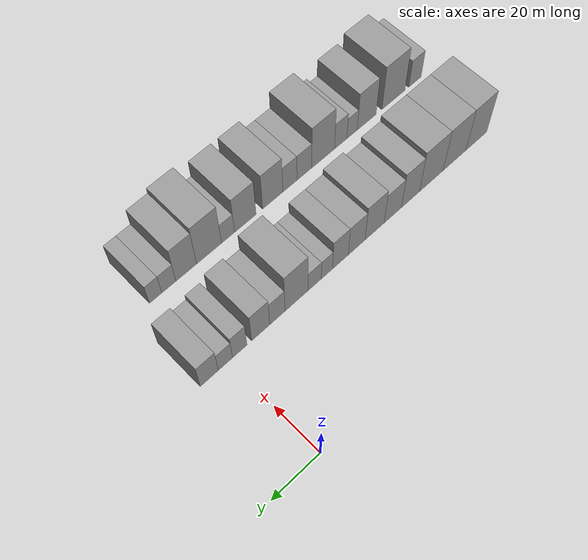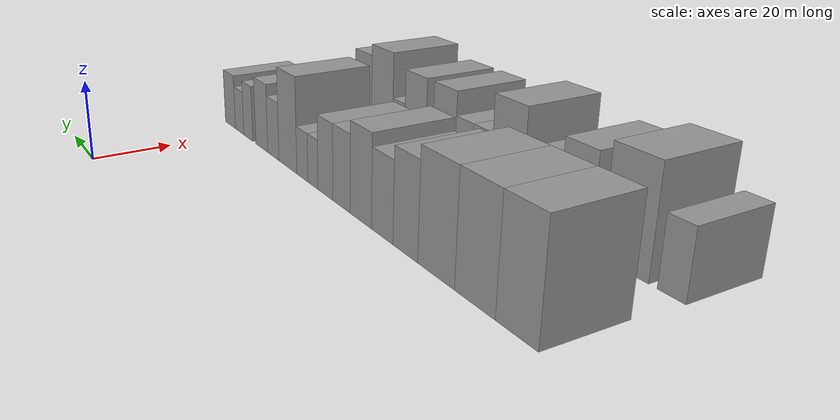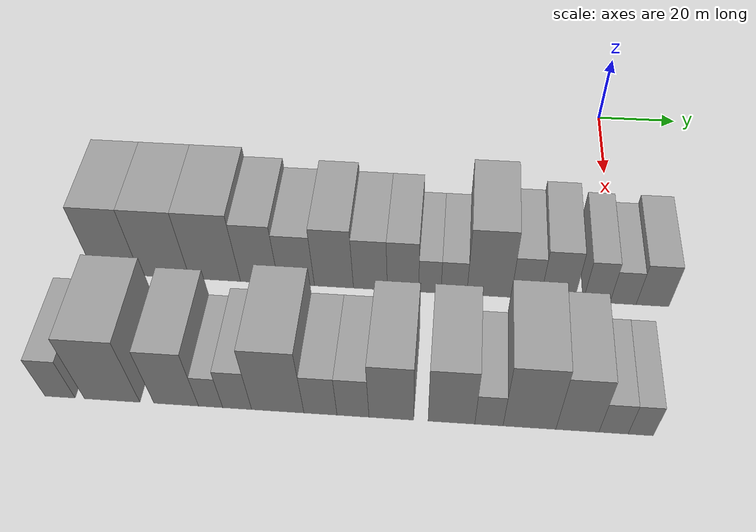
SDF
<sdf version="1.6">
 <world name="default">
  <model name="building_15">
   <static>1</static>
   <pose>50.0000 -115.5003 0 0.000000 0.000000 0.000000</pose>
   <link name="link">
    <pose>0 0 12.00 0 0 0</pose>
    <collision name="collision"><geometry><box><size>20.0000 10.9469 24.0000</size></box></geometry></collision>
    <visual name="visual">
     <cast_shadows>0</cast_shadows>
     <geometry><box><size>20.0000 10.9469 24.0000</size></box></geometry>
     <material>
      <script>
       <uri>model://grey_wall/materials/scripts</uri>
       <uri>model://grey_wall/materials/textures</uri>
       <name>vrc/grey_wall</name>
      </script>
     </material>
    </visual>
   </link>
  </model>
  <model name="building_16">
   <static>1</static>
   <pose>50.0000 -104.1812 0 0.000000 0.000000 0.000000</pose>
   <link name="link">
    <pose>0 0 12.00 0 0 0</pose>
    <collision name="collision"><geometry><box><size>20.0000 11.6913 24.0000</size></box></geometry></collision>
    <visual name="visual">
     <cast_shadows>0</cast_shadows>
     <geometry><box><size>20.0000 11.6913 24.0000</size></box></geometry>
     <material>
      <script>
       <uri>model://grey_wall/materials/scripts</uri>
       <uri>model://grey_wall/materials/textures</uri>
       <name>vrc/grey_wall</name>
      </script>
     </material>
    </visual>
   </link>
  </model>
  <model name="building_17">
   <static>1</static>
   <pose>50.0000 -92.3757 0 0.000000 0.000000 0.000000</pose>
   <link name="link">
    <pose>0 0 12.00 0 0 0</pose>
    <collision name="collision"><geometry><box><size>20.0000 11.9197 24.0000</size></box></geometry></collision>
    <visual name="visual">
     <cast_shadows>0</cast_shadows>
     <geometry><box><size>20.0000 11.9197 24.0000</size></box></geometry>
     <material>
      <script>
       <uri>model://grey_wall/materials/scripts</uri>
       <uri>model://grey_wall/materials/textures</uri>
       <name>vrc/grey_wall</name>
      </script>
     </material>
    </visual>
   </link>
  </model>
  <model name="building_18">
   <static>1</static>
   <pose>50.0000 -81.9634 0 0.000000 0.000000 0.000000</pose>
   <link name="link">
    <pose>0 0 10.50 0 0 0</pose>
    <collision name="collision"><geometry><box><size>20.0000 8.9050 21.0000</size></box></geometry></collision>
    <visual name="visual">
     <cast_shadows>0</cast_shadows>
     <geometry><box><size>20.0000 8.9050 21.0000</size></box></geometry>
     <material>
      <script>
       <uri>model://grey_wall/materials/scripts</uri>
       <uri>model://grey_wall/materials/textures</uri>
       <name>vrc/grey_wall</name>
      </script>
     </material>
    </visual>
   </link>
  </model>
  <model name="building_19">
   <static>1</static>
   <pose>50.0000 -73.3345 0 0.000000 0.000000 0.000000</pose>
   <link name="link">
    <pose>0 0 9.00 0 0 0</pose>
    <collision name="collision"><geometry><box><size>20.0000 8.3528 18.0000</size></box></geometry></collision>
    <visual name="visual">
     <cast_shadows>0</cast_shadows>
     <geometry><box><size>20.0000 8.3528 18.0000</size></box></geometry>
     <material>
      <script>
       <uri>model://grey_wall/materials/scripts</uri>
       <uri>model://grey_wall/materials/textures</uri>
       <name>vrc/grey_wall</name>
      </script>
     </material>
    </visual>
   </link>
  </model>
  <model name="building_20">
   <static>1</static>
   <pose>50.0000 -64.6351 0 0.000000 0.000000 0.000000</pose>
   <link name="link">
    <pose>0 0 10.50 0 0 0</pose>
    <collision name="collision"><geometry><box><size>20.0000 9.0460 21.0000</size></box></geometry></collision>
    <visual name="visual">
     <cast_shadows>0</cast_shadows>
     <geometry><box><size>20.0000 9.0460 21.0000</size></box></geometry>
     <material>
      <script>
       <uri>model://grey_wall/materials/scripts</uri>
       <uri>model://grey_wall/materials/textures</uri>
       <name>vrc/grey_wall</name>
      </script>
     </material>
    </visual>
   </link>
  </model>
  <model name="building_21">
   <static>1</static>
   <pose>50.0000 -56.1918 0 0.000000 0.000000 0.000000</pose>
   <link name="link">
    <pose>0 0 9.00 0 0 0</pose>
    <collision name="collision"><geometry><box><size>20.0000 7.8406 18.0000</size></box></geometry></collision>
    <visual name="visual">
     <cast_shadows>0</cast_shadows>
     <geometry><box><size>20.0000 7.8406 18.0000</size></box></geometry>
     <material>
      <script>
       <uri>model://grey_wall/materials/scripts</uri>
       <uri>model://grey_wall/materials/textures</uri>
       <name>vrc/grey_wall</name>
      </script>
     </material>
    </visual>
   </link>
  </model>
  <model name="building_22">
   <static>1</static>
   <pose>50.0000 -48.6585 0 0.000000 0.000000 0.000000</pose>
   <link name="link">
    <pose>0 0 9.00 0 0 0</pose>
    <collision name="collision"><geometry><box><size>20.0000 7.2261 18.0000</size></box></geometry></collision>
    <visual name="visual">
     <cast_shadows>0</cast_shadows>
     <geometry><box><size>20.0000 7.2261 18.0000</size></box></geometry>
     <material>
      <script>
       <uri>model://grey_wall/materials/scripts</uri>
       <uri>model://grey_wall/materials/textures</uri>
       <name>vrc/grey_wall</name>
      </script>
     </material>
    </visual>
   </link>
  </model>
  <model name="building_23">
   <static>1</static>
   <pose>50.0000 -42.4910 0 0.000000 0.000000 0.000000</pose>
   <link name="link">
    <pose>0 0 6.00 0 0 0</pose>
    <collision name="collision"><geometry><box><size>20.0000 5.1089 12.0000</size></box></geometry></collision>
    <visual name="visual">
     <cast_shadows>0</cast_shadows>
     <geometry><box><size>20.0000 5.1089 12.0000</size></box></geometry>
     <material>
      <script>
       <uri>model://grey_wall/materials/scripts</uri>
       <uri>model://grey_wall/materials/textures</uri>
       <name>vrc/grey_wall</name>
      </script>
     </material>
    </visual>
   </link>
  </model>
  <model name="building_24">
   <static>1</static>
   <pose>50.0000 -36.9791 0 0.000000 0.000000 0.000000</pose>
   <link name="link">
    <pose>0 0 6.00 0 0 0</pose>
    <collision name="collision"><geometry><box><size>20.0000 5.9149 12.0000</size></box></geometry></collision>
    <visual name="visual">
     <cast_shadows>0</cast_shadows>
     <geometry><box><size>20.0000 5.9149 12.0000</size></box></geometry>
     <material>
      <script>
       <uri>model://grey_wall/materials/scripts</uri>
       <uri>model://grey_wall/materials/textures</uri>
       <name>vrc/grey_wall</name>
      </script>
     </material>
    </visual>
   </link>
  </model>
  <model name="building_25">
   <static>1</static>
   <pose>50.0000 -28.9703 0 0.000000 0.000000 0.000000</pose>
   <link name="link">
    <pose>0 0 12.00 0 0 0</pose>
    <collision name="collision"><geometry><box><size>20.0000 10.1026 24.0000</size></box></geometry></collision>
    <visual name="visual">
     <cast_shadows>0</cast_shadows>
     <geometry><box><size>20.0000 10.1026 24.0000</size></box></geometry>
     <material>
      <script>
       <uri>model://grey_wall/materials/scripts</uri>
       <uri>model://grey_wall/materials/textures</uri>
       <name>vrc/grey_wall</name>
      </script>
     </material>
    </visual>
   </link>
  </model>
  <model name="building_26">
   <static>1</static>
   <pose>50.0000 -20.5697 0 0.000000 0.000000 0.000000</pose>
   <link name="link">
    <pose>0 0 7.50 0 0 0</pose>
    <collision name="collision"><geometry><box><size>20.0000 6.6987 15.0000</size></box></geometry></collision>
    <visual name="visual">
     <cast_shadows>0</cast_shadows>
     <geometry><box><size>20.0000 6.6987 15.0000</size></box></geometry>
     <material>
      <script>
       <uri>model://grey_wall/materials/scripts</uri>
       <uri>model://grey_wall/materials/textures</uri>
       <name>vrc/grey_wall</name>
      </script>
     </material>
    </visual>
   </link>
  </model>
  <model name="building_27">
   <static>1</static>
   <pose>50.0000 -13.3778 0 0.000000 0.000000 0.000000</pose>
   <link name="link">
    <pose>0 0 9.00 0 0 0</pose>
    <collision name="collision"><geometry><box><size>20.0000 7.6851 18.0000</size></box></geometry></collision>
    <visual name="visual">
     <cast_shadows>0</cast_shadows>
     <geometry><box><size>20.0000 7.6851 18.0000</size></box></geometry>
     <material>
      <script>
       <uri>model://grey_wall/materials/scripts</uri>
       <uri>model://grey_wall/materials/textures</uri>
       <name>vrc/grey_wall</name>
      </script>
     </material>
    </visual>
   </link>
  </model>
  <model name="building_28">
   <static>1</static>
   <pose>50.0000 -4.5084 0 0.000000 0.000000 0.000000</pose>
   <link name="link">
    <pose>0 0 7.50 0 0 0</pose>
    <collision name="collision"><geometry><box><size>20.0000 6.0537 15.0000</size></box></geometry></collision>
    <visual name="visual">
     <cast_shadows>0</cast_shadows>
     <geometry><box><size>20.0000 6.0537 15.0000</size></box></geometry>
     <material>
      <script>
       <uri>model://grey_wall/materials/scripts</uri>
       <uri>model://grey_wall/materials/textures</uri>
       <name>vrc/grey_wall</name>
      </script>
     </material>
    </visual>
   </link>
  </model>
  <model name="building_29">
   <static>1</static>
   <pose>50.0000 1.4817 0 0.000000 0.000000 0.000000</pose>
   <link name="link">
    <pose>0 0 6.00 0 0 0</pose>
    <collision name="collision"><geometry><box><size>20.0000 5.9267 12.0000</size></box></geometry></collision>
    <visual name="visual">
     <cast_shadows>0</cast_shadows>
     <geometry><box><size>20.0000 5.9267 12.0000</size></box></geometry>
     <material>
      <script>
       <uri>model://grey_wall/materials/scripts</uri>
       <uri>model://grey_wall/materials/textures</uri>
       <name>vrc/grey_wall</name>
      </script>
     </material>
    </visual>
   </link>
  </model>
  <model name="building_30">
   <static>1</static>
   <pose>50.0000 8.1328 0 0.000000 0.000000 0.000000</pose>
   <link name="link">
    <pose>0 0 7.50 0 0 0</pose>
    <collision name="collision"><geometry><box><size>20.0000 7.3756 15.0000</size></box></geometry></collision>
    <visual name="visual">
     <cast_shadows>0</cast_shadows>
     <geometry><box><size>20.0000 7.3756 15.0000</size></box></geometry>
     <material>
      <script>
       <uri>model://grey_wall/materials/scripts</uri>
       <uri>model://grey_wall/materials/textures</uri>
       <name>vrc/grey_wall</name>
      </script>
     </material>
    </visual>
   </link>
  </model>
  <model name="building_79">
   <static>1</static>
   <pose>82.0000 -118.8463 0 0.000000 0.000000 0.000000</pose>
   <link name="link">
    <pose>0 0 7.50 0 0 0</pose>
    <collision name="collision"><geometry><box><size>20.0000 6.4748 15.0000</size></box></geometry></collision>
    <visual name="visual">
     <cast_shadows>0</cast_shadows>
     <geometry><box><size>20.0000 6.4748 15.0000</size></box></geometry>
     <material>
      <script>
       <uri>model://grey_wall/materials/scripts</uri>
       <uri>model://grey_wall/materials/textures</uri>
       <name>vrc/grey_wall</name>
      </script>
     </material>
    </visual>
   </link>
  </model>
  <model name="building_80">
   <static>1</static>
   <pose>82.0000 -107.6737 0 0.000000 0.000000 0.000000</pose>
   <link name="link">
    <pose>0 0 12.00 0 0 0</pose>
    <collision name="collision"><geometry><box><size>20.0000 11.8703 24.0000</size></box></geometry></collision>
    <visual name="visual">
     <cast_shadows>0</cast_shadows>
     <geometry><box><size>20.0000 11.8703 24.0000</size></box></geometry>
     <material>
      <script>
       <uri>model://grey_wall/materials/scripts</uri>
       <uri>model://grey_wall/materials/textures</uri>
       <name>vrc/grey_wall</name>
      </script>
     </material>
    </visual>
   </link>
  </model>
  <model name="building_81">
   <static>1</static>
   <pose>82.0000 -93.9997 0 0.000000 0.000000 0.000000</pose>
   <link name="link">
    <pose>0 0 10.50 0 0 0</pose>
    <collision name="collision"><geometry><box><size>20.0000 9.4776 21.0000</size></box></geometry></collision>
    <visual name="visual">
     <cast_shadows>0</cast_shadows>
     <geometry><box><size>20.0000 9.4776 21.0000</size></box></geometry>
     <material>
      <script>
       <uri>model://grey_wall/materials/scripts</uri>
       <uri>model://grey_wall/materials/textures</uri>
       <name>vrc/grey_wall</name>
      </script>
     </material>
    </visual>
   </link>
  </model>
  <model name="building_82">
   <static>1</static>
   <pose>82.0000 -86.6975 0 0.000000 0.000000 0.000000</pose>
   <link name="link">
    <pose>0 0 6.00 0 0 0</pose>
    <collision name="collision"><geometry><box><size>20.0000 5.1269 12.0000</size></box></geometry></collision>
    <visual name="visual">
     <cast_shadows>0</cast_shadows>
     <geometry><box><size>20.0000 5.1269 12.0000</size></box></geometry>
     <material>
      <script>
       <uri>model://grey_wall/materials/scripts</uri>
       <uri>model://grey_wall/materials/textures</uri>
       <name>vrc/grey_wall</name>
      </script>
     </material>
    </visual>
   </link>
  </model>
  <model name="building_83">
   <static>1</static>
   <pose>82.0000 -81.0775 0 0.000000 0.000000 0.000000</pose>
   <link name="link">
    <pose>0 0 7.50 0 0 0</pose>
    <collision name="collision"><geometry><box><size>20.0000 6.1131 15.0000</size></box></geometry></collision>
    <visual name="visual">
     <cast_shadows>0</cast_shadows>
     <geometry><box><size>20.0000 6.1131 15.0000</size></box></geometry>
     <material>
      <script>
       <uri>model://grey_wall/materials/scripts</uri>
       <uri>model://grey_wall/materials/textures</uri>
       <name>vrc/grey_wall</name>
      </script>
     </material>
    </visual>
   </link>
  </model>
  <model name="building_84">
   <static>1</static>
   <pose>82.0000 -72.5196 0 0.000000 0.000000 0.000000</pose>
   <link name="link">
    <pose>0 0 12.00 0 0 0</pose>
    <collision name="collision"><geometry><box><size>20.0000 11.0028 24.0000</size></box></geometry></collision>
    <visual name="visual">
     <cast_shadows>0</cast_shadows>
     <geometry><box><size>20.0000 11.0028 24.0000</size></box></geometry>
     <material>
      <script>
       <uri>model://grey_wall/materials/scripts</uri>
       <uri>model://grey_wall/materials/textures</uri>
       <name>vrc/grey_wall</name>
      </script>
     </material>
    </visual>
   </link>
  </model>
  <model name="building_85">
   <static>1</static>
   <pose>82.0000 -63.5574 0 0.000000 0.000000 0.000000</pose>
   <link name="link">
    <pose>0 0 7.50 0 0 0</pose>
    <collision name="collision"><geometry><box><size>20.0000 6.9216 15.0000</size></box></geometry></collision>
    <visual name="visual">
     <cast_shadows>0</cast_shadows>
     <geometry><box><size>20.0000 6.9216 15.0000</size></box></geometry>
     <material>
      <script>
       <uri>model://grey_wall/materials/scripts</uri>
       <uri>model://grey_wall/materials/textures</uri>
       <name>vrc/grey_wall</name>
      </script>
     </material>
    </visual>
   </link>
  </model>
  <model name="building_86">
   <static>1</static>
   <pose>82.0000 -56.7613 0 0.000000 0.000000 0.000000</pose>
   <link name="link">
    <pose>0 0 7.50 0 0 0</pose>
    <collision name="collision"><geometry><box><size>20.0000 6.6706 15.0000</size></box></geometry></collision>
    <visual name="visual">
     <cast_shadows>0</cast_shadows>
     <geometry><box><size>20.0000 6.6706 15.0000</size></box></geometry>
     <material>
      <script>
       <uri>model://grey_wall/materials/scripts</uri>
       <uri>model://grey_wall/materials/textures</uri>
       <name>vrc/grey_wall</name>
      </script>
     </material>
    </visual>
   </link>
  </model>
  <model name="building_87">
   <static>1</static>
   <pose>82.0000 -48.7768 0 0.000000 0.000000 0.000000</pose>
   <link name="link">
    <pose>0 0 10.50 0 0 0</pose>
    <collision name="collision"><geometry><box><size>20.0000 9.2984 21.0000</size></box></geometry></collision>
    <visual name="visual">
     <cast_shadows>0</cast_shadows>
     <geometry><box><size>20.0000 9.2984 21.0000</size></box></geometry>
     <material>
      <script>
       <uri>model://grey_wall/materials/scripts</uri>
       <uri>model://grey_wall/materials/textures</uri>
       <name>vrc/grey_wall</name>
      </script>
     </material>
    </visual>
   </link>
  </model>
  <model name="building_88">
   <static>1</static>
   <pose>82.0000 -36.3054 0 0.000000 0.000000 0.000000</pose>
   <link name="link">
    <pose>0 0 10.50 0 0 0</pose>
    <collision name="collision"><geometry><box><size>20.0000 9.6443 21.0000</size></box></geometry></collision>
    <visual name="visual">
     <cast_shadows>0</cast_shadows>
     <geometry><box><size>20.0000 9.6443 21.0000</size></box></geometry>
     <material>
      <script>
       <uri>model://grey_wall/materials/scripts</uri>
       <uri>model://grey_wall/materials/textures</uri>
       <name>vrc/grey_wall</name>
      </script>
     </material>
    </visual>
   </link>
  </model>
  <model name="building_89">
   <static>1</static>
   <pose>82.0000 -28.5764 0 0.000000 0.000000 0.000000</pose>
   <link name="link">
    <pose>0 0 6.00 0 0 0</pose>
    <collision name="collision"><geometry><box><size>20.0000 5.8137 12.0000</size></box></geometry></collision>
    <visual name="visual">
     <cast_shadows>0</cast_shadows>
     <geometry><box><size>20.0000 5.8137 12.0000</size></box></geometry>
     <material>
      <script>
       <uri>model://grey_wall/materials/scripts</uri>
       <uri>model://grey_wall/materials/textures</uri>
       <name>vrc/grey_wall</name>
      </script>
     </material>
    </visual>
   </link>
  </model>
  <model name="building_90">
   <static>1</static>
   <pose>82.0000 -20.2498 0 0.000000 0.000000 0.000000</pose>
   <link name="link">
    <pose>0 0 12.00 0 0 0</pose>
    <collision name="collision"><geometry><box><size>20.0000 10.8395 24.0000</size></box></geometry></collision>
    <visual name="visual">
     <cast_shadows>0</cast_shadows>
     <geometry><box><size>20.0000 10.8395 24.0000</size></box></geometry>
     <material>
      <script>
       <uri>model://grey_wall/materials/scripts</uri>
       <uri>model://grey_wall/materials/textures</uri>
       <name>vrc/grey_wall</name>
      </script>
     </material>
    </visual>
   </link>
  </model>
  <model name="building_91">
   <static>1</static>
   <pose>82.0000 -10.4302 0 0.000000 0.000000 0.000000</pose>
   <link name="link">
    <pose>0 0 10.50 0 0 0</pose>
    <collision name="collision"><geometry><box><size>20.0000 8.7997 21.0000</size></box></geometry></collision>
    <visual name="visual">
     <cast_shadows>0</cast_shadows>
     <geometry><box><size>20.0000 8.7997 21.0000</size></box></geometry>
     <material>
      <script>
       <uri>model://grey_wall/materials/scripts</uri>
       <uri>model://grey_wall/materials/textures</uri>
       <name>vrc/grey_wall</name>
      </script>
     </material>
    </visual>
   </link>
  </model>
  <model name="building_92">
   <static>1</static>
   <pose>82.0000 -3.0596 0 0.000000 0.000000 0.000000</pose>
   <link name="link">
    <pose>0 0 6.00 0 0 0</pose>
    <collision name="collision"><geometry><box><size>20.0000 5.9416 12.0000</size></box></geometry></collision>
    <visual name="visual">
     <cast_shadows>0</cast_shadows>
     <geometry><box><size>20.0000 5.9416 12.0000</size></box></geometry>
     <material>
      <script>
       <uri>model://grey_wall/materials/scripts</uri>
       <uri>model://grey_wall/materials/textures</uri>
       <name>vrc/grey_wall</name>
      </script>
     </material>
    </visual>
   </link>
  </model>
  <model name="building_93">
   <static>1</static>
   <pose>82.0000 2.4791 0 0.000000 0.000000 0.000000</pose>
   <link name="link">
    <pose>0 0 6.00 0 0 0</pose>
    <collision name="collision"><geometry><box><size>20.0000 5.1357 12.0000</size></box></geometry></collision>
    <visual name="visual">
     <cast_shadows>0</cast_shadows>
     <geometry><box><size>20.0000 5.1357 12.0000</size></box></geometry>
     <material>
      <script>
       <uri>model://grey_wall/materials/scripts</uri>
       <uri>model://grey_wall/materials/textures</uri>
       <name>vrc/grey_wall</name>
      </script>
     </material>
    </visual>
   </link>
  </model>
 </world>
</sdf>
